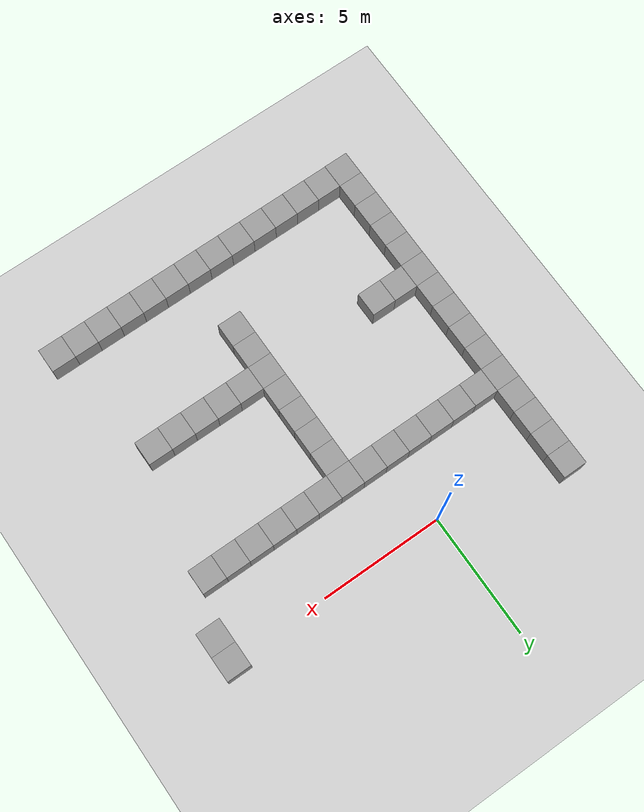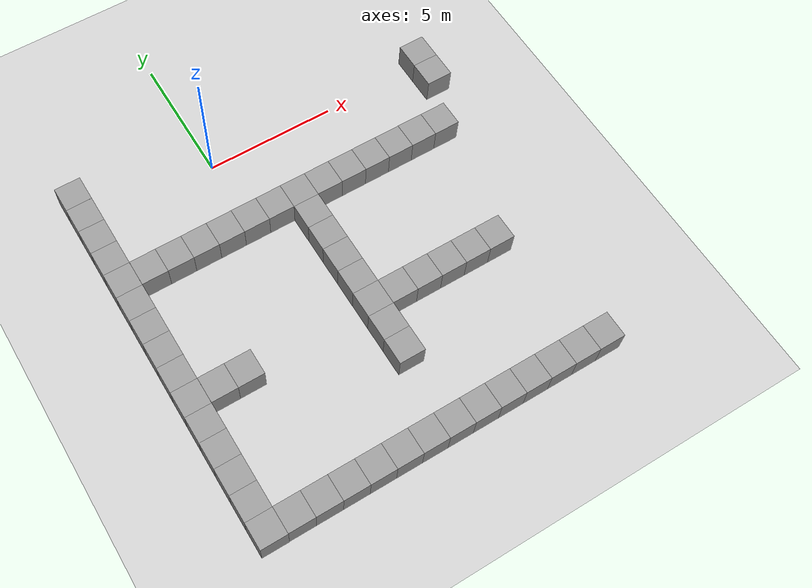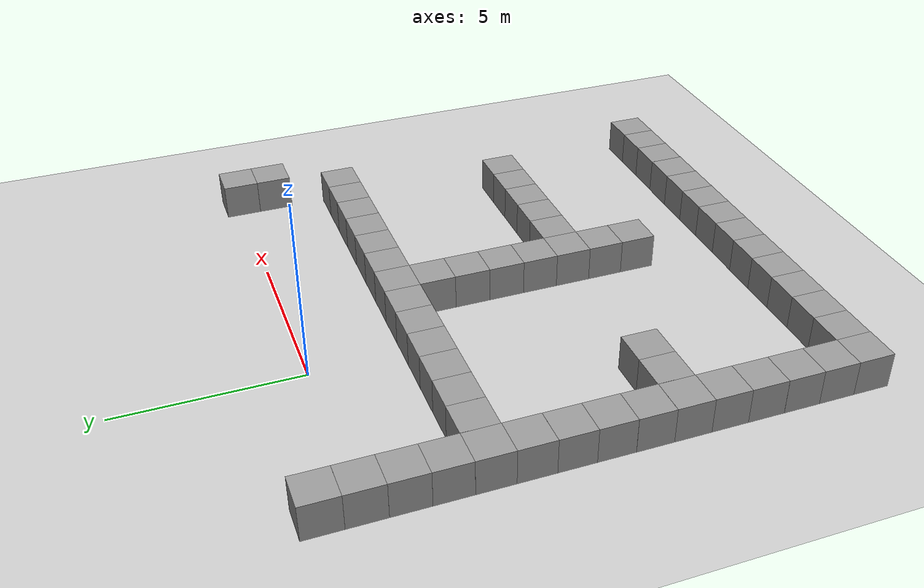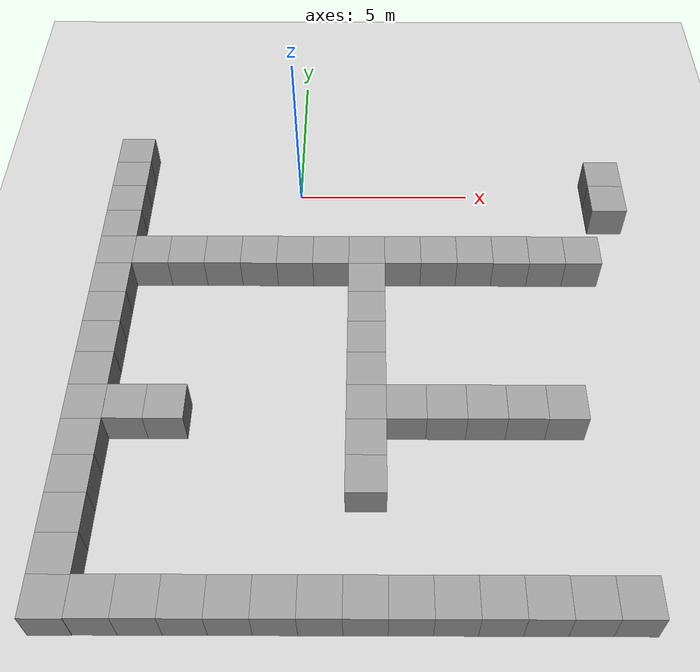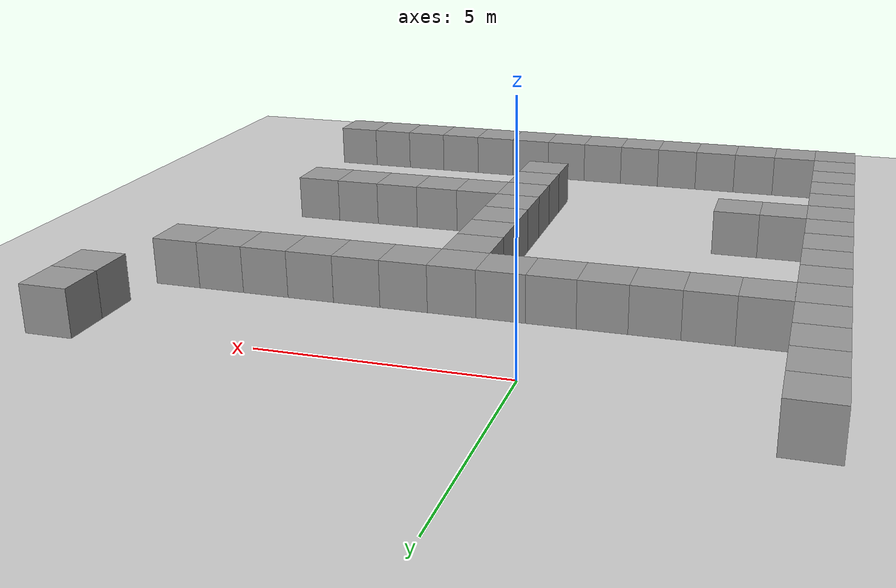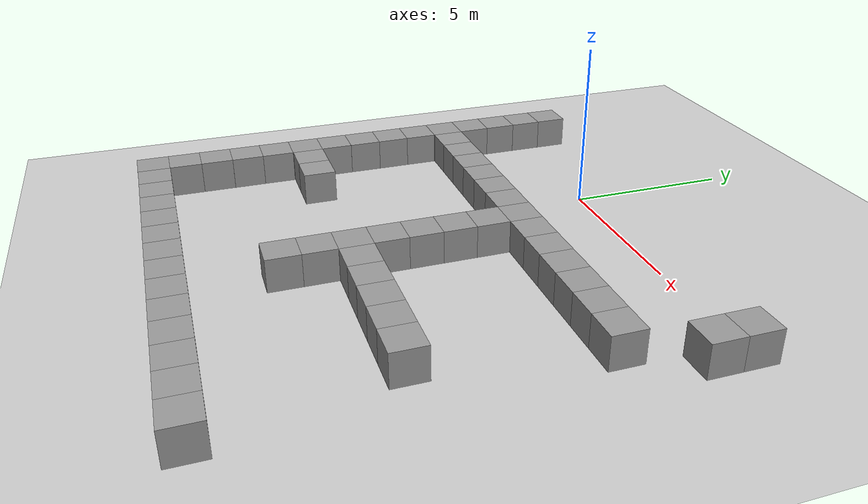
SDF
<sdf version="1.4">
 <world name="default">
  <model name="ground_plane">
   <static>1</static>
   <link name="link">
    <collision name="collision">
     <geometry><plane><normal>0 0 1</normal><size>100 100</size></plane></geometry>
     <surface><friction><ode><mu>100</mu><mu2>50</mu2></ode></friction></surface>
    </collision>
    <visual name="visual">
     <cast_shadows>0</cast_shadows>
     <geometry><plane><normal>0 0 1</normal><size>100 100</size></plane></geometry>
     <material>
      <script><uri>file://media/materials/scripts/gazebo.material</uri><name>Gazebo/Grey</name></script>
     </material>
    </visual>
    <velocity_decay><linear>0</linear><angular>0</angular></velocity_decay>
   </link>
  </model>
  <model name="unit_box_15">
   <pose>-0.999934 -2.99993 0.5 0 0 -3.9e-05</pose>
   <static>1</static>
   <link name="link">
    <inertial>
     <mass>1</mass>
     <inertia><ixx>1</ixx><ixy>0</ixy><ixz>0</ixz><iyy>1</iyy><iyz>0</iyz><izz>1</izz></inertia>
    </inertial>
    <collision name="collision"><geometry><box><size>1 1 1</size></box></geometry></collision>
    <visual name="visual">
     <geometry><box><size>1 1 1</size></box></geometry>
     <material>
      <script><uri>file://media/materials/scripts/gazebo.material</uri><name>Gazebo/Grey</name></script>
     </material>
    </visual>
    <velocity_decay><linear>0</linear><angular>0</angular></velocity_decay>
   </link>
   <static>0</static>
  </model>
  <model name="unit_box_16">
   <pose>6.7e-05 -2.99994 0.5 0 0 -3.6e-05</pose>
   <static>1</static>
   <link name="link">
    <inertial>
     <mass>1</mass>
     <inertia><ixx>1</ixx><ixy>0</ixy><ixz>0</ixz><iyy>1</iyy><iyz>0</iyz><izz>1</izz></inertia>
    </inertial>
    <collision name="collision"><geometry><box><size>1 1 1</size></box></geometry></collision>
    <visual name="visual">
     <geometry><box><size>1 1 1</size></box></geometry>
     <material>
      <script><uri>file://media/materials/scripts/gazebo.material</uri><name>Gazebo/Grey</name></script>
     </material>
    </visual>
    <velocity_decay><linear>0</linear><angular>0</angular></velocity_decay>
   </link>
   <static>0</static>
  </model>
  <model name="unit_box_17">
   <pose>1.00008 -2.99994 0.5 0 0 -1.9e-05</pose>
   <static>1</static>
   <link name="link">
    <inertial>
     <mass>1</mass>
     <inertia><ixx>1</ixx><ixy>0</ixy><ixz>0</ixz><iyy>1</iyy><iyz>0</iyz><izz>1</izz></inertia>
    </inertial>
    <collision name="collision"><geometry><box><size>1 1 1</size></box></geometry></collision>
    <visual name="visual">
     <geometry><box><size>1 1 1</size></box></geometry>
     <material>
      <script><uri>file://media/materials/scripts/gazebo.material</uri><name>Gazebo/Grey</name></script>
     </material>
    </visual>
    <velocity_decay><linear>0</linear><angular>0</angular></velocity_decay>
   </link>
   <static>0</static>
  </model>
  <model name="unit_box_18">
   <pose>2.00008 -2.99995 0.5 0 0 -1.5e-05</pose>
   <static>1</static>
   <link name="link">
    <inertial>
     <mass>1</mass>
     <inertia><ixx>1</ixx><ixy>0</ixy><ixz>0</ixz><iyy>1</iyy><iyz>0</iyz><izz>1</izz></inertia>
    </inertial>
    <collision name="collision"><geometry><box><size>1 1 1</size></box></geometry></collision>
    <visual name="visual">
     <geometry><box><size>1 1 1</size></box></geometry>
     <material>
      <script><uri>file://media/materials/scripts/gazebo.material</uri><name>Gazebo/Grey</name></script>
     </material>
    </visual>
    <velocity_decay><linear>0</linear><angular>0</angular></velocity_decay>
   </link>
   <static>0</static>
  </model>
  <model name="unit_box_19">
   <pose>3.00008 -2.9999 0.5 0 0 -1e-05</pose>
   <static>1</static>
   <link name="link">
    <inertial>
     <mass>1</mass>
     <inertia><ixx>1</ixx><ixy>0</ixy><ixz>0</ixz><iyy>1</iyy><iyz>0</iyz><izz>1</izz></inertia>
    </inertial>
    <collision name="collision"><geometry><box><size>1 1 1</size></box></geometry></collision>
    <visual name="visual">
     <geometry><box><size>1 1 1</size></box></geometry>
     <material>
      <script><uri>file://media/materials/scripts/gazebo.material</uri><name>Gazebo/Grey</name></script>
     </material>
    </visual>
    <velocity_decay><linear>0</linear><angular>0</angular></velocity_decay>
   </link>
   <static>0</static>
  </model>
  <model name="unit_box_20">
   <pose>4.00008 -2.99993 0.5 0 0 -1e-05</pose>
   <static>1</static>
   <link name="link">
    <inertial>
     <mass>1</mass>
     <inertia><ixx>1</ixx><ixy>0</ixy><ixz>0</ixz><iyy>1</iyy><iyz>0</iyz><izz>1</izz></inertia>
    </inertial>
    <collision name="collision"><geometry><box><size>1 1 1</size></box></geometry></collision>
    <visual name="visual">
     <geometry><box><size>1 1 1</size></box></geometry>
     <material>
      <script><uri>file://media/materials/scripts/gazebo.material</uri><name>Gazebo/Grey</name></script>
     </material>
    </visual>
    <velocity_decay><linear>0</linear><angular>0</angular></velocity_decay>
   </link>
   <static>0</static>
  </model>
  <model name="unit_box_21">
   <pose>5.00008 -2.99993 0.5 0 0 -1.2e-05</pose>
   <static>1</static>
   <link name="link">
    <inertial>
     <mass>1</mass>
     <inertia><ixx>1</ixx><ixy>0</ixy><ixz>0</ixz><iyy>1</iyy><iyz>0</iyz><izz>1</izz></inertia>
    </inertial>
    <collision name="collision"><geometry><box><size>1 1 1</size></box></geometry></collision>
    <visual name="visual">
     <geometry><box><size>1 1 1</size></box></geometry>
     <material>
      <script><uri>file://media/materials/scripts/gazebo.material</uri><name>Gazebo/Grey</name></script>
     </material>
    </visual>
    <velocity_decay><linear>0</linear><angular>0</angular></velocity_decay>
   </link>
   <static>0</static>
  </model>
  <model name="unit_box_22">
   <pose>6.00009 -2.99997 0.5 0 0 -1.2e-05</pose>
   <static>1</static>
   <link name="link">
    <inertial>
     <mass>1</mass>
     <inertia><ixx>1</ixx><ixy>0</ixy><ixz>0</ixz><iyy>1</iyy><iyz>0</iyz><izz>1</izz></inertia>
    </inertial>
    <collision name="collision"><geometry><box><size>1 1 1</size></box></geometry></collision>
    <visual name="visual">
     <geometry><box><size>1 1 1</size></box></geometry>
     <material>
      <script><uri>file://media/materials/scripts/gazebo.material</uri><name>Gazebo/Grey</name></script>
     </material>
    </visual>
    <velocity_decay><linear>0</linear><angular>0</angular></velocity_decay>
   </link>
   <static>0</static>
  </model>
  <model name="unit_box_23">
   <pose>7.00009 -2.99996 0.5 0 0 -1e-05</pose>
   <static>1</static>
   <link name="link">
    <inertial>
     <mass>1</mass>
     <inertia><ixx>1</ixx><ixy>0</ixy><ixz>0</ixz><iyy>1</iyy><iyz>0</iyz><izz>1</izz></inertia>
    </inertial>
    <collision name="collision"><geometry><box><size>1 1 1</size></box></geometry></collision>
    <visual name="visual">
     <geometry><box><size>1 1 1</size></box></geometry>
     <material>
      <script><uri>file://media/materials/scripts/gazebo.material</uri><name>Gazebo/Grey</name></script>
     </material>
    </visual>
    <velocity_decay><linear>0</linear><angular>0</angular></velocity_decay>
   </link>
   <static>0</static>
  </model>
  <model name="unit_box_24">
   <pose>8.00009 -3 0.5 0 0 -1.4e-05</pose>
   <static>1</static>
   <link name="link">
    <inertial>
     <mass>1</mass>
     <inertia><ixx>1</ixx><ixy>0</ixy><ixz>0</ixz><iyy>1</iyy><iyz>0</iyz><izz>1</izz></inertia>
    </inertial>
    <collision name="collision"><geometry><box><size>1 1 1</size></box></geometry></collision>
    <visual name="visual">
     <geometry><box><size>1 1 1</size></box></geometry>
     <material>
      <script><uri>file://media/materials/scripts/gazebo.material</uri><name>Gazebo/Grey</name></script>
     </material>
    </visual>
    <velocity_decay><linear>0</linear><angular>0</angular></velocity_decay>
   </link>
   <static>0</static>
  </model>
  <model name="unit_box_27">
   <pose>8.99997 -1.00001 0.5 0 0 -1e-05</pose>
   <static>1</static>
   <link name="link">
    <inertial>
     <mass>1</mass>
     <inertia><ixx>1</ixx><ixy>0</ixy><ixz>0</ixz><iyy>1</iyy><iyz>0</iyz><izz>1</izz></inertia>
    </inertial>
    <collision name="collision"><geometry><box><size>1 1 1</size></box></geometry></collision>
    <visual name="visual">
     <geometry><box><size>1 1 1</size></box></geometry>
     <material>
      <script><uri>file://media/materials/scripts/gazebo.material</uri><name>Gazebo/Grey</name></script>
     </material>
    </visual>
    <velocity_decay><linear>0</linear><angular>0</angular></velocity_decay>
   </link>
   <static>0</static>
  </model>
  <model name="unit_box_28">
   <pose>8.99994 -8e-06 0.5 0 0 -1.1e-05</pose>
   <static>1</static>
   <link name="link">
    <inertial>
     <mass>1</mass>
     <inertia><ixx>1</ixx><ixy>0</ixy><ixz>0</ixz><iyy>1</iyy><iyz>0</iyz><izz>1</izz></inertia>
    </inertial>
    <collision name="collision"><geometry><box><size>1 1 1</size></box></geometry></collision>
    <visual name="visual">
     <geometry><box><size>1 1 1</size></box></geometry>
     <material>
      <script><uri>file://media/materials/scripts/gazebo.material</uri><name>Gazebo/Grey</name></script>
     </material>
    </visual>
    <velocity_decay><linear>0</linear><angular>0</angular></velocity_decay>
   </link>
   <static>0</static>
  </model>
  <model name="unit_box_43">
   <pose>-5.00197 0.99143 0.5 0 -0 0.001375</pose>
   <static>1</static>
   <link name="link">
    <inertial>
     <mass>1</mass>
     <inertia><ixx>1</ixx><ixy>0</ixy><ixz>0</ixz><iyy>1</iyy><iyz>0</iyz><izz>1</izz></inertia>
    </inertial>
    <collision name="collision"><geometry><box><size>1 1 1</size></box></geometry></collision>
    <visual name="visual">
     <geometry><box><size>1 1 1</size></box></geometry>
     <material>
      <script><uri>file://media/materials/scripts/gazebo.material</uri><name>Gazebo/Grey</name></script>
     </material>
    </visual>
    <velocity_decay><linear>0</linear><angular>0</angular></velocity_decay>
   </link>
   <static>0</static>
  </model>
  <model name="unit_box_44">
   <pose>-5.00065 -0.008792 0.5 0 -0 0.000932</pose>
   <static>1</static>
   <link name="link">
    <inertial>
     <mass>1</mass>
     <inertia><ixx>1</ixx><ixy>0</ixy><ixz>0</ixz><iyy>1</iyy><iyz>0</iyz><izz>1</izz></inertia>
    </inertial>
    <collision name="collision"><geometry><box><size>1 1 1</size></box></geometry></collision>
    <visual name="visual">
     <geometry><box><size>1 1 1</size></box></geometry>
     <material>
      <script><uri>file://media/materials/scripts/gazebo.material</uri><name>Gazebo/Grey</name></script>
     </material>
    </visual>
    <velocity_decay><linear>0</linear><angular>0</angular></velocity_decay>
   </link>
   <static>0</static>
  </model>
  <model name="unit_box_45">
   <pose>-5.00074 -1.00881 0.5 0 -0 0.000893</pose>
   <static>1</static>
   <link name="link">
    <inertial>
     <mass>1</mass>
     <inertia><ixx>1</ixx><ixy>0</ixy><ixz>0</ixz><iyy>1</iyy><iyz>0</iyz><izz>1</izz></inertia>
    </inertial>
    <collision name="collision"><geometry><box><size>1 1 1</size></box></geometry></collision>
    <visual name="visual">
     <geometry><box><size>1 1 1</size></box></geometry>
     <material>
      <script><uri>file://media/materials/scripts/gazebo.material</uri><name>Gazebo/Grey</name></script>
     </material>
    </visual>
    <velocity_decay><linear>0</linear><angular>0</angular></velocity_decay>
   </link>
   <static>0</static>
  </model>
  <model name="unit_box_46">
   <pose>-5.00037 -2.00886 0.5 0 -0 0.000802</pose>
   <static>1</static>
   <link name="link">
    <inertial>
     <mass>1</mass>
     <inertia><ixx>1</ixx><ixy>0</ixy><ixz>0</ixz><iyy>1</iyy><iyz>0</iyz><izz>1</izz></inertia>
    </inertial>
    <collision name="collision"><geometry><box><size>1 1 1</size></box></geometry></collision>
    <visual name="visual">
     <geometry><box><size>1 1 1</size></box></geometry>
     <material>
      <script><uri>file://media/materials/scripts/gazebo.material</uri><name>Gazebo/Grey</name></script>
     </material>
    </visual>
    <velocity_decay><linear>0</linear><angular>0</angular></velocity_decay>
   </link>
   <static>0</static>
  </model>
  <model name="unit_box_47">
   <pose>-5.00047 -3.0089 0.5 0 -0 0.000729</pose>
   <static>1</static>
   <link name="link">
    <inertial>
     <mass>1</mass>
     <inertia><ixx>1</ixx><ixy>0</ixy><ixz>0</ixz><iyy>1</iyy><iyz>0</iyz><izz>1</izz></inertia>
    </inertial>
    <collision name="collision"><geometry><box><size>1 1 1</size></box></geometry></collision>
    <visual name="visual">
     <geometry><box><size>1 1 1</size></box></geometry>
     <material>
      <script><uri>file://media/materials/scripts/gazebo.material</uri><name>Gazebo/Grey</name></script>
     </material>
    </visual>
    <velocity_decay><linear>0</linear><angular>0</angular></velocity_decay>
   </link>
   <static>0</static>
  </model>
  <model name="unit_box_48">
   <pose>-3.99998 -3.00036 0.5 0 0 -0.000119</pose>
   <static>1</static>
   <link name="link">
    <inertial>
     <mass>1</mass>
     <inertia><ixx>1</ixx><ixy>0</ixy><ixz>0</ixz><iyy>1</iyy><iyz>0</iyz><izz>1</izz></inertia>
    </inertial>
    <collision name="collision"><geometry><box><size>1 1 1</size></box></geometry></collision>
    <visual name="visual">
     <geometry><box><size>1 1 1</size></box></geometry>
     <material>
      <script><uri>file://media/materials/scripts/gazebo.material</uri><name>Gazebo/Grey</name></script>
     </material>
    </visual>
    <velocity_decay><linear>0</linear><angular>0</angular></velocity_decay>
   </link>
   <static>0</static>
  </model>
  <model name="unit_box_49">
   <pose>-2.99995 -3.00005 0.5 0 0 -7.3e-05</pose>
   <static>1</static>
   <link name="link">
    <inertial>
     <mass>1</mass>
     <inertia><ixx>1</ixx><ixy>0</ixy><ixz>0</ixz><iyy>1</iyy><iyz>0</iyz><izz>1</izz></inertia>
    </inertial>
    <collision name="collision"><geometry><box><size>1 1 1</size></box></geometry></collision>
    <visual name="visual">
     <geometry><box><size>1 1 1</size></box></geometry>
     <material>
      <script><uri>file://media/materials/scripts/gazebo.material</uri><name>Gazebo/Grey</name></script>
     </material>
    </visual>
    <velocity_decay><linear>0</linear><angular>0</angular></velocity_decay>
   </link>
   <static>0</static>
  </model>
  <model name="unit_box_50">
   <pose>-1.99995 -3.00002 0.5 0 0 -7.1e-05</pose>
   <static>1</static>
   <link name="link">
    <inertial>
     <mass>1</mass>
     <inertia><ixx>1</ixx><ixy>0</ixy><ixz>0</ixz><iyy>1</iyy><iyz>0</iyz><izz>1</izz></inertia>
    </inertial>
    <collision name="collision"><geometry><box><size>1 1 1</size></box></geometry></collision>
    <visual name="visual">
     <geometry><box><size>1 1 1</size></box></geometry>
     <material>
      <script><uri>file://media/materials/scripts/gazebo.material</uri><name>Gazebo/Grey</name></script>
     </material>
    </visual>
    <velocity_decay><linear>0</linear><angular>0</angular></velocity_decay>
   </link>
   <static>0</static>
  </model>
  <model name="unit_box_224">
   <pose>1.99999 -3.99999 0.5 0 0 -4e-06</pose>
   <static>1</static>
   <link name="link">
    <inertial>
     <mass>1</mass>
     <inertia><ixx>1</ixx><ixy>0</ixy><ixz>0</ixz><iyy>1</iyy><iyz>0</iyz><izz>1</izz></inertia>
    </inertial>
    <collision name="collision"><geometry><box><size>1 1 1</size></box></geometry></collision>
    <visual name="visual">
     <geometry><box><size>1 1 1</size></box></geometry>
     <material>
      <script><uri>file://media/materials/scripts/gazebo.material</uri><name>Gazebo/Grey</name></script>
     </material>
    </visual>
    <velocity_decay><linear>0</linear><angular>0</angular></velocity_decay>
   </link>
   <static>0</static>
  </model>
  <model name="unit_box_225">
   <pose>2 -4.99999 0.5 0 0 -4e-06</pose>
   <static>1</static>
   <link name="link">
    <inertial>
     <mass>1</mass>
     <inertia><ixx>1</ixx><ixy>0</ixy><ixz>0</ixz><iyy>1</iyy><iyz>0</iyz><izz>1</izz></inertia>
    </inertial>
    <collision name="collision"><geometry><box><size>1 1 1</size></box></geometry></collision>
    <visual name="visual">
     <geometry><box><size>1 1 1</size></box></geometry>
     <material>
      <script><uri>file://media/materials/scripts/gazebo.material</uri><name>Gazebo/Grey</name></script>
     </material>
    </visual>
    <velocity_decay><linear>0</linear><angular>0</angular></velocity_decay>
   </link>
   <static>0</static>
  </model>
  <model name="unit_box_226">
   <pose>2.00001 -6 0.5 0 0 -3e-06</pose>
   <static>1</static>
   <link name="link">
    <inertial>
     <mass>1</mass>
     <inertia><ixx>1</ixx><ixy>0</ixy><ixz>0</ixz><iyy>1</iyy><iyz>0</iyz><izz>1</izz></inertia>
    </inertial>
    <collision name="collision"><geometry><box><size>1 1 1</size></box></geometry></collision>
    <visual name="visual">
     <geometry><box><size>1 1 1</size></box></geometry>
     <material>
      <script><uri>file://media/materials/scripts/gazebo.material</uri><name>Gazebo/Grey</name></script>
     </material>
    </visual>
    <velocity_decay><linear>0</linear><angular>0</angular></velocity_decay>
   </link>
   <static>0</static>
  </model>
  <model name="unit_box_227">
   <pose>2 -7 0.5 0 0 -4e-06</pose>
   <static>1</static>
   <link name="link">
    <inertial>
     <mass>1</mass>
     <inertia><ixx>1</ixx><ixy>0</ixy><ixz>0</ixz><iyy>1</iyy><iyz>0</iyz><izz>1</izz></inertia>
    </inertial>
    <collision name="collision"><geometry><box><size>1 1 1</size></box></geometry></collision>
    <visual name="visual">
     <geometry><box><size>1 1 1</size></box></geometry>
     <material>
      <script><uri>file://media/materials/scripts/gazebo.material</uri><name>Gazebo/Grey</name></script>
     </material>
    </visual>
    <velocity_decay><linear>0</linear><angular>0</angular></velocity_decay>
   </link>
   <static>0</static>
  </model>
  <model name="unit_box_228">
   <pose>2 -8 0.5 0 0 -4e-06</pose>
   <static>1</static>
   <link name="link">
    <inertial>
     <mass>1</mass>
     <inertia><ixx>1</ixx><ixy>0</ixy><ixz>0</ixz><iyy>1</iyy><iyz>0</iyz><izz>1</izz></inertia>
    </inertial>
    <collision name="collision"><geometry><box><size>1 1 1</size></box></geometry></collision>
    <visual name="visual">
     <geometry><box><size>1 1 1</size></box></geometry>
     <material>
      <script><uri>file://media/materials/scripts/gazebo.material</uri><name>Gazebo/Grey</name></script>
     </material>
    </visual>
    <velocity_decay><linear>0</linear><angular>0</angular></velocity_decay>
   </link>
   <static>0</static>
  </model>
  <model name="unit_box_229">
   <pose>2 -9 0.5 0 0 -3e-06</pose>
   <static>1</static>
   <link name="link">
    <inertial>
     <mass>1</mass>
     <inertia><ixx>1</ixx><ixy>0</ixy><ixz>0</ixz><iyy>1</iyy><iyz>0</iyz><izz>1</izz></inertia>
    </inertial>
    <collision name="collision"><geometry><box><size>1 1 1</size></box></geometry></collision>
    <visual name="visual">
     <geometry><box><size>1 1 1</size></box></geometry>
     <material>
      <script><uri>file://media/materials/scripts/gazebo.material</uri><name>Gazebo/Grey</name></script>
     </material>
    </visual>
    <velocity_decay><linear>0</linear><angular>0</angular></velocity_decay>
   </link>
   <static>0</static>
  </model>
  <model name="unit_box_230">
   <pose>3 -8 0.5 0 0 -4e-06</pose>
   <static>1</static>
   <link name="link">
    <inertial>
     <mass>1</mass>
     <inertia><ixx>1</ixx><ixy>0</ixy><ixz>0</ixz><iyy>1</iyy><iyz>0</iyz><izz>1</izz></inertia>
    </inertial>
    <collision name="collision"><geometry><box><size>1 1 1</size></box></geometry></collision>
    <visual name="visual">
     <geometry><box><size>1 1 1</size></box></geometry>
     <material>
      <script><uri>file://media/materials/scripts/gazebo.material</uri><name>Gazebo/Grey</name></script>
     </material>
    </visual>
    <velocity_decay><linear>0</linear><angular>0</angular></velocity_decay>
   </link>
   <static>0</static>
  </model>
  <model name="unit_box_231">
   <pose>4 -8 0.5 0 0 -5e-06</pose>
   <static>1</static>
   <link name="link">
    <inertial>
     <mass>1</mass>
     <inertia><ixx>1</ixx><ixy>0</ixy><ixz>0</ixz><iyy>1</iyy><iyz>0</iyz><izz>1</izz></inertia>
    </inertial>
    <collision name="collision"><geometry><box><size>1 1 1</size></box></geometry></collision>
    <visual name="visual">
     <geometry><box><size>1 1 1</size></box></geometry>
     <material>
      <script><uri>file://media/materials/scripts/gazebo.material</uri><name>Gazebo/Grey</name></script>
     </material>
    </visual>
    <velocity_decay><linear>0</linear><angular>0</angular></velocity_decay>
   </link>
   <static>0</static>
  </model>
  <model name="unit_box_232">
   <pose>5 -7.99999 0.5 0 0 -5e-06</pose>
   <static>1</static>
   <link name="link">
    <inertial>
     <mass>1</mass>
     <inertia><ixx>1</ixx><ixy>0</ixy><ixz>0</ixz><iyy>1</iyy><iyz>0</iyz><izz>1</izz></inertia>
    </inertial>
    <collision name="collision"><geometry><box><size>1 1 1</size></box></geometry></collision>
    <visual name="visual">
     <geometry><box><size>1 1 1</size></box></geometry>
     <material>
      <script><uri>file://media/materials/scripts/gazebo.material</uri><name>Gazebo/Grey</name></script>
     </material>
    </visual>
    <velocity_decay><linear>0</linear><angular>0</angular></velocity_decay>
   </link>
   <static>0</static>
  </model>
  <model name="unit_box_233">
   <pose>6 -8 0.5 0 0 -5e-06</pose>
   <static>1</static>
   <link name="link">
    <inertial>
     <mass>1</mass>
     <inertia><ixx>1</ixx><ixy>0</ixy><ixz>0</ixz><iyy>1</iyy><iyz>0</iyz><izz>1</izz></inertia>
    </inertial>
    <collision name="collision"><geometry><box><size>1 1 1</size></box></geometry></collision>
    <visual name="visual">
     <geometry><box><size>1 1 1</size></box></geometry>
     <material>
      <script><uri>file://media/materials/scripts/gazebo.material</uri><name>Gazebo/Grey</name></script>
     </material>
    </visual>
    <velocity_decay><linear>0</linear><angular>0</angular></velocity_decay>
   </link>
   <static>0</static>
  </model>
  <model name="unit_box_234">
   <pose>7 -7.99999 0.5 0 0 -5e-06</pose>
   <static>1</static>
   <link name="link">
    <inertial>
     <mass>1</mass>
     <inertia><ixx>1</ixx><ixy>0</ixy><ixz>0</ixz><iyy>1</iyy><iyz>0</iyz><izz>1</izz></inertia>
    </inertial>
    <collision name="collision"><geometry><box><size>1 1 1</size></box></geometry></collision>
    <visual name="visual">
     <geometry><box><size>1 1 1</size></box></geometry>
     <material>
      <script><uri>file://media/materials/scripts/gazebo.material</uri><name>Gazebo/Grey</name></script>
     </material>
    </visual>
    <velocity_decay><linear>0</linear><angular>0</angular></velocity_decay>
   </link>
   <static>0</static>
  </model>
  <model name="unit_box_240">
   <pose>2 -10 0.5 0 0 -3e-06</pose>
   <static>1</static>
   <link name="link">
    <inertial>
     <mass>1</mass>
     <inertia><ixx>1</ixx><ixy>0</ixy><ixz>0</ixz><iyy>1</iyy><iyz>0</iyz><izz>1</izz></inertia>
    </inertial>
    <collision name="collision"><geometry><box><size>1 1 1</size></box></geometry></collision>
    <visual name="visual">
     <geometry><box><size>1 1 1</size></box></geometry>
     <material>
      <script><uri>file://media/materials/scripts/gazebo.material</uri><name>Gazebo/Grey</name></script>
     </material>
    </visual>
    <velocity_decay><linear>0</linear><angular>0</angular></velocity_decay>
   </link>
   <static>0</static>
  </model>
  <model name="unit_box_241">
   <pose>-4.99974 -4.00895 0.5 0 -0 0.000637</pose>
   <static>1</static>
   <link name="link">
    <inertial>
     <mass>1</mass>
     <inertia><ixx>1</ixx><ixy>0</ixy><ixz>0</ixz><iyy>1</iyy><iyz>0</iyz><izz>1</izz></inertia>
    </inertial>
    <collision name="collision"><geometry><box><size>1 1 1</size></box></geometry></collision>
    <visual name="visual">
     <geometry><box><size>1 1 1</size></box></geometry>
     <material>
      <script><uri>file://media/materials/scripts/gazebo.material</uri><name>Gazebo/Grey</name></script>
     </material>
    </visual>
    <velocity_decay><linear>0</linear><angular>0</angular></velocity_decay>
   </link>
   <static>0</static>
  </model>
  <model name="unit_box_243">
   <pose>-4 -8 0.5 0 0 -2e-06</pose>
   <static>1</static>
   <link name="link">
    <inertial>
     <mass>1</mass>
     <inertia><ixx>1</ixx><ixy>0</ixy><ixz>0</ixz><iyy>1</iyy><iyz>0</iyz><izz>1</izz></inertia>
    </inertial>
    <collision name="collision"><geometry><box><size>1 1 1</size></box></geometry></collision>
    <visual name="visual">
     <geometry><box><size>1 1 1</size></box></geometry>
     <material>
      <script><uri>file://media/materials/scripts/gazebo.material</uri><name>Gazebo/Grey</name></script>
     </material>
    </visual>
    <velocity_decay><linear>0</linear><angular>0</angular></velocity_decay>
   </link>
   <static>0</static>
  </model>
  <model name="unit_box_244">
   <pose>-3 -8 0.5 0 -0 4e-06</pose>
   <static>1</static>
   <link name="link">
    <inertial>
     <mass>1</mass>
     <inertia><ixx>1</ixx><ixy>0</ixy><ixz>0</ixz><iyy>1</iyy><iyz>0</iyz><izz>1</izz></inertia>
    </inertial>
    <collision name="collision"><geometry><box><size>1 1 1</size></box></geometry></collision>
    <visual name="visual">
     <geometry><box><size>1 1 1</size></box></geometry>
     <material>
      <script><uri>file://media/materials/scripts/gazebo.material</uri><name>Gazebo/Grey</name></script>
     </material>
    </visual>
    <velocity_decay><linear>0</linear><angular>0</angular></velocity_decay>
   </link>
   <static>0</static>
  </model>
  <model name="unit_box_251">
   <pose>-4.00002 -13 0.5 1.61559e-27 -1e-06 -1.2e-05</pose>
   <static>1</static>
   <link name="link">
    <inertial>
     <mass>1</mass>
     <inertia><ixx>1</ixx><ixy>0</ixy><ixz>0</ixz><iyy>1</iyy><iyz>0</iyz><izz>1</izz></inertia>
    </inertial>
    <collision name="collision"><geometry><box><size>1 1 1</size></box></geometry></collision>
    <visual name="visual">
     <geometry><box><size>1 1 1</size></box></geometry>
     <material>
      <script><uri>file://media/materials/scripts/gazebo.material</uri><name>Gazebo/Grey</name></script>
     </material>
    </visual>
    <velocity_decay><linear>0</linear><angular>0</angular></velocity_decay>
   </link>
   <static>0</static>
  </model>
  <model name="unit_box_252">
   <pose>-3.00002 -13 0.5 0 0 -1.1e-05</pose>
   <static>1</static>
   <link name="link">
    <inertial>
     <mass>1</mass>
     <inertia><ixx>1</ixx><ixy>0</ixy><ixz>0</ixz><iyy>1</iyy><iyz>0</iyz><izz>1</izz></inertia>
    </inertial>
    <collision name="collision"><geometry><box><size>1 1 1</size></box></geometry></collision>
    <visual name="visual">
     <geometry><box><size>1 1 1</size></box></geometry>
     <material>
      <script><uri>file://media/materials/scripts/gazebo.material</uri><name>Gazebo/Grey</name></script>
     </material>
    </visual>
    <velocity_decay><linear>0</linear><angular>0</angular></velocity_decay>
   </link>
   <static>0</static>
  </model>
  <model name="unit_box_253">
   <pose>-2.00001 -13 0.5 0 0 -1e-05</pose>
   <static>1</static>
   <link name="link">
    <inertial>
     <mass>1</mass>
     <inertia><ixx>1</ixx><ixy>0</ixy><ixz>0</ixz><iyy>1</iyy><iyz>0</iyz><izz>1</izz></inertia>
    </inertial>
    <collision name="collision"><geometry><box><size>1 1 1</size></box></geometry></collision>
    <visual name="visual">
     <geometry><box><size>1 1 1</size></box></geometry>
     <material>
      <script><uri>file://media/materials/scripts/gazebo.material</uri><name>Gazebo/Grey</name></script>
     </material>
    </visual>
    <velocity_decay><linear>0</linear><angular>0</angular></velocity_decay>
   </link>
   <static>0</static>
  </model>
  <model name="unit_box_254">
   <pose>-1.00001 -13 0.5 0 0 -1e-05</pose>
   <static>1</static>
   <link name="link">
    <inertial>
     <mass>1</mass>
     <inertia><ixx>1</ixx><ixy>0</ixy><ixz>0</ixz><iyy>1</iyy><iyz>0</iyz><izz>1</izz></inertia>
    </inertial>
    <collision name="collision"><geometry><box><size>1 1 1</size></box></geometry></collision>
    <visual name="visual">
     <geometry><box><size>1 1 1</size></box></geometry>
     <material>
      <script><uri>file://media/materials/scripts/gazebo.material</uri><name>Gazebo/Grey</name></script>
     </material>
    </visual>
    <velocity_decay><linear>0</linear><angular>0</angular></velocity_decay>
   </link>
   <static>0</static>
  </model>
  <model name="unit_box_255">
   <pose>-1.2e-05 -12.9999 0.5 0 0 -8e-06</pose>
   <static>1</static>
   <link name="link">
    <inertial>
     <mass>1</mass>
     <inertia><ixx>1</ixx><ixy>0</ixy><ixz>0</ixz><iyy>1</iyy><iyz>0</iyz><izz>1</izz></inertia>
    </inertial>
    <collision name="collision"><geometry><box><size>1 1 1</size></box></geometry></collision>
    <visual name="visual">
     <geometry><box><size>1 1 1</size></box></geometry>
     <material>
      <script><uri>file://media/materials/scripts/gazebo.material</uri><name>Gazebo/Grey</name></script>
     </material>
    </visual>
    <velocity_decay><linear>0</linear><angular>0</angular></velocity_decay>
   </link>
   <static>0</static>
  </model>
  <model name="unit_box_256">
   <pose>0.999991 -12.9999 0.5 0 0 -7e-06</pose>
   <static>1</static>
   <link name="link">
    <inertial>
     <mass>1</mass>
     <inertia><ixx>1</ixx><ixy>0</ixy><ixz>0</ixz><iyy>1</iyy><iyz>0</iyz><izz>1</izz></inertia>
    </inertial>
    <collision name="collision"><geometry><box><size>1 1 1</size></box></geometry></collision>
    <visual name="visual">
     <geometry><box><size>1 1 1</size></box></geometry>
     <material>
      <script><uri>file://media/materials/scripts/gazebo.material</uri><name>Gazebo/Grey</name></script>
     </material>
    </visual>
    <velocity_decay><linear>0</linear><angular>0</angular></velocity_decay>
   </link>
   <static>0</static>
  </model>
  <model name="unit_box_257">
   <pose>1.99999 -12.9999 0.5 0 0 -7e-06</pose>
   <static>1</static>
   <link name="link">
    <inertial>
     <mass>1</mass>
     <inertia><ixx>1</ixx><ixy>0</ixy><ixz>0</ixz><iyy>1</iyy><iyz>0</iyz><izz>1</izz></inertia>
    </inertial>
    <collision name="collision"><geometry><box><size>1 1 1</size></box></geometry></collision>
    <visual name="visual">
     <geometry><box><size>1 1 1</size></box></geometry>
     <material>
      <script><uri>file://media/materials/scripts/gazebo.material</uri><name>Gazebo/Grey</name></script>
     </material>
    </visual>
    <velocity_decay><linear>0</linear><angular>0</angular></velocity_decay>
   </link>
   <static>0</static>
  </model>
  <model name="unit_box_258">
   <pose>2.99999 -12.9999 0.5 0 0 -5e-06</pose>
   <static>1</static>
   <link name="link">
    <inertial>
     <mass>1</mass>
     <inertia><ixx>1</ixx><ixy>0</ixy><ixz>0</ixz><iyy>1</iyy><iyz>0</iyz><izz>1</izz></inertia>
    </inertial>
    <collision name="collision"><geometry><box><size>1 1 1</size></box></geometry></collision>
    <visual name="visual">
     <geometry><box><size>1 1 1</size></box></geometry>
     <material>
      <script><uri>file://media/materials/scripts/gazebo.material</uri><name>Gazebo/Grey</name></script>
     </material>
    </visual>
    <velocity_decay><linear>0</linear><angular>0</angular></velocity_decay>
   </link>
   <static>0</static>
  </model>
  <model name="unit_box_259">
   <pose>4 -13 0.5 0 0 -5e-06</pose>
   <static>1</static>
   <link name="link">
    <inertial>
     <mass>1</mass>
     <inertia><ixx>1</ixx><ixy>0</ixy><ixz>0</ixz><iyy>1</iyy><iyz>0</iyz><izz>1</izz></inertia>
    </inertial>
    <collision name="collision"><geometry><box><size>1 1 1</size></box></geometry></collision>
    <visual name="visual">
     <geometry><box><size>1 1 1</size></box></geometry>
     <material>
      <script><uri>file://media/materials/scripts/gazebo.material</uri><name>Gazebo/Grey</name></script>
     </material>
    </visual>
    <velocity_decay><linear>0</linear><angular>0</angular></velocity_decay>
   </link>
   <static>0</static>
  </model>
  <model name="unit_box_260">
   <pose>5 -12.9999 0.499989 -3e-06 -0 -7e-06</pose>
   <static>1</static>
   <link name="link">
    <inertial>
     <mass>1</mass>
     <inertia><ixx>1</ixx><ixy>0</ixy><ixz>0</ixz><iyy>1</iyy><iyz>0</iyz><izz>1</izz></inertia>
    </inertial>
    <collision name="collision"><geometry><box><size>1 1 1</size></box></geometry></collision>
    <visual name="visual">
     <geometry><box><size>1 1 1</size></box></geometry>
     <material>
      <script><uri>file://media/materials/scripts/gazebo.material</uri><name>Gazebo/Grey</name></script>
     </material>
    </visual>
    <velocity_decay><linear>0</linear><angular>0</angular></velocity_decay>
   </link>
   <static>0</static>
  </model>
  <model name="unit_box_261">
   <pose>6 -13 0.500001 2e-06 3.23117e-27 -7e-06</pose>
   <static>1</static>
   <link name="link">
    <inertial>
     <mass>1</mass>
     <inertia><ixx>1</ixx><ixy>0</ixy><ixz>0</ixz><iyy>1</iyy><iyz>0</iyz><izz>1</izz></inertia>
    </inertial>
    <collision name="collision"><geometry><box><size>1 1 1</size></box></geometry></collision>
    <visual name="visual">
     <geometry><box><size>1 1 1</size></box></geometry>
     <material>
      <script><uri>file://media/materials/scripts/gazebo.material</uri><name>Gazebo/Grey</name></script>
     </material>
    </visual>
    <velocity_decay><linear>0</linear><angular>0</angular></velocity_decay>
   </link>
   <static>0</static>
  </model>
  <model name="unit_box_262">
   <pose>7 -13 0.5 0 0 -1.1e-05</pose>
   <static>1</static>
   <link name="link">
    <inertial>
     <mass>1</mass>
     <inertia><ixx>1</ixx><ixy>0</ixy><ixz>0</ixz><iyy>1</iyy><iyz>0</iyz><izz>1</izz></inertia>
    </inertial>
    <collision name="collision"><geometry><box><size>1 1 1</size></box></geometry></collision>
    <visual name="visual">
     <geometry><box><size>1 1 1</size></box></geometry>
     <material>
      <script><uri>file://media/materials/scripts/gazebo.material</uri><name>Gazebo/Grey</name></script>
     </material>
    </visual>
    <velocity_decay><linear>0</linear><angular>0</angular></velocity_decay>
   </link>
   <static>0</static>
  </model>
  <model name="unit_box_263">
   <pose>8 -13 0.499998 3e-06 -0 -1.1e-05</pose>
   <static>1</static>
   <link name="link">
    <inertial>
     <mass>1</mass>
     <inertia><ixx>1</ixx><ixy>0</ixy><ixz>0</ixz><iyy>1</iyy><iyz>0</iyz><izz>1</izz></inertia>
    </inertial>
    <collision name="collision"><geometry><box><size>1 1 1</size></box></geometry></collision>
    <visual name="visual">
     <geometry><box><size>1 1 1</size></box></geometry>
     <material>
      <script><uri>file://media/materials/scripts/gazebo.material</uri><name>Gazebo/Grey</name></script>
     </material>
    </visual>
    <velocity_decay><linear>0</linear><angular>0</angular></velocity_decay>
   </link>
   <static>0</static>
  </model>
  <model name="unit_box_1_0">
   <pose>-4.99941 -5.00907 0.499996 -4e-06 -3e-06 0.00044</pose>
   <link name="link">
    <inertial>
     <mass>1</mass>
     <inertia><ixx>1</ixx><ixy>0</ixy><ixz>0</ixz><iyy>1</iyy><iyz>0</iyz><izz>1</izz></inertia>
    </inertial>
    <collision name="collision"><geometry><box><size>1 1 1</size></box></geometry></collision>
    <visual name="visual">
     <geometry><box><size>1 1 1</size></box></geometry>
     <material>
      <script><uri>file://media/materials/scripts/gazebo.material</uri><name>Gazebo/Grey</name></script>
     </material>
    </visual>
    <velocity_decay><linear>0</linear><angular>0</angular></velocity_decay>
   </link>
   <static>0</static>
  </model>
  <model name="unit_box_2_0">
   <pose>-4.99888 -6.00909 0.5 0 -0 0.000451</pose>
   <link name="link">
    <inertial>
     <mass>1</mass>
     <inertia><ixx>1</ixx><ixy>0</ixy><ixz>0</ixz><iyy>1</iyy><iyz>0</iyz><izz>1</izz></inertia>
    </inertial>
    <collision name="collision"><geometry><box><size>1 1 1</size></box></geometry></collision>
    <visual name="visual">
     <geometry><box><size>1 1 1</size></box></geometry>
     <material>
      <script><uri>file://media/materials/scripts/gazebo.material</uri><name>Gazebo/Grey</name></script>
     </material>
    </visual>
    <velocity_decay><linear>0</linear><angular>0</angular></velocity_decay>
   </link>
   <static>0</static>
  </model>
  <model name="unit_box_3_0">
   <pose>-5.00138 -7.00913 0.499996 -4e-06 -3e-06 0.000444</pose>
   <link name="link">
    <inertial>
     <mass>1</mass>
     <inertia><ixx>1</ixx><ixy>0</ixy><ixz>0</ixz><iyy>1</iyy><iyz>0</iyz><izz>1</izz></inertia>
    </inertial>
    <collision name="collision"><geometry><box><size>1 1 1</size></box></geometry></collision>
    <visual name="visual">
     <geometry><box><size>1 1 1</size></box></geometry>
     <material>
      <script><uri>file://media/materials/scripts/gazebo.material</uri><name>Gazebo/Grey</name></script>
     </material>
    </visual>
    <velocity_decay><linear>0</linear><angular>0</angular></velocity_decay>
   </link>
   <static>0</static>
  </model>
  <model name="unit_box_4_0">
   <pose>-5.00075 -8.00916 0.5 0 -0 0.000466</pose>
   <link name="link">
    <inertial>
     <mass>1</mass>
     <inertia><ixx>1</ixx><ixy>0</ixy><ixz>0</ixz><iyy>1</iyy><iyz>0</iyz><izz>1</izz></inertia>
    </inertial>
    <collision name="collision"><geometry><box><size>1 1 1</size></box></geometry></collision>
    <visual name="visual">
     <geometry><box><size>1 1 1</size></box></geometry>
     <material>
      <script><uri>file://media/materials/scripts/gazebo.material</uri><name>Gazebo/Grey</name></script>
     </material>
    </visual>
    <velocity_decay><linear>0</linear><angular>0</angular></velocity_decay>
   </link>
   <static>0</static>
  </model>
  <model name="unit_box_5_0">
   <pose>-4.99951 -9.00918 0.5 0 -0 0.000463</pose>
   <link name="link">
    <inertial>
     <mass>1</mass>
     <inertia><ixx>1</ixx><ixy>0</ixy><ixz>0</ixz><iyy>1</iyy><iyz>0</iyz><izz>1</izz></inertia>
    </inertial>
    <collision name="collision"><geometry><box><size>1 1 1</size></box></geometry></collision>
    <visual name="visual">
     <geometry><box><size>1 1 1</size></box></geometry>
     <material>
      <script><uri>file://media/materials/scripts/gazebo.material</uri><name>Gazebo/Grey</name></script>
     </material>
    </visual>
    <velocity_decay><linear>0</linear><angular>0</angular></velocity_decay>
   </link>
   <static>0</static>
  </model>
  <model name="unit_box_6_0">
   <pose>-5.00029 -10.0092 0.5 0 -0 0.000458</pose>
   <link name="link">
    <inertial>
     <mass>1</mass>
     <inertia><ixx>1</ixx><ixy>0</ixy><ixz>0</ixz><iyy>1</iyy><iyz>0</iyz><izz>1</izz></inertia>
    </inertial>
    <collision name="collision"><geometry><box><size>1 1 1</size></box></geometry></collision>
    <visual name="visual">
     <geometry><box><size>1 1 1</size></box></geometry>
     <material>
      <script><uri>file://media/materials/scripts/gazebo.material</uri><name>Gazebo/Grey</name></script>
     </material>
    </visual>
    <velocity_decay><linear>0</linear><angular>0</angular></velocity_decay>
   </link>
   <static>0</static>
  </model>
  <model name="unit_box_7_0">
   <pose>-5.00175 -11.0092 0.5 0 -0 0.000455</pose>
   <link name="link">
    <inertial>
     <mass>1</mass>
     <inertia><ixx>1</ixx><ixy>0</ixy><ixz>0</ixz><iyy>1</iyy><iyz>0</iyz><izz>1</izz></inertia>
    </inertial>
    <collision name="collision"><geometry><box><size>1 1 1</size></box></geometry></collision>
    <visual name="visual">
     <geometry><box><size>1 1 1</size></box></geometry>
     <material>
      <script><uri>file://media/materials/scripts/gazebo.material</uri><name>Gazebo/Grey</name></script>
     </material>
    </visual>
    <velocity_decay><linear>0</linear><angular>0</angular></velocity_decay>
   </link>
   <static>0</static>
  </model>
  <model name="unit_box_8_0">
   <pose>-5.00098 -12.0092 0.5 0 -0 0.000455</pose>
   <link name="link">
    <inertial>
     <mass>1</mass>
     <inertia><ixx>1</ixx><ixy>0</ixy><ixz>0</ixz><iyy>1</iyy><iyz>0</iyz><izz>1</izz></inertia>
    </inertial>
    <collision name="collision"><geometry><box><size>1 1 1</size></box></geometry></collision>
    <visual name="visual">
     <geometry><box><size>1 1 1</size></box></geometry>
     <material>
      <script><uri>file://media/materials/scripts/gazebo.material</uri><name>Gazebo/Grey</name></script>
     </material>
    </visual>
    <velocity_decay><linear>0</linear><angular>0</angular></velocity_decay>
   </link>
   <static>0</static>
  </model>
  <model name="unit_box_9_0">
   <pose>-5.00026 -13.0092 0.5 0 -0 0.000453</pose>
   <link name="link">
    <inertial>
     <mass>1</mass>
     <inertia><ixx>1</ixx><ixy>0</ixy><ixz>0</ixz><iyy>1</iyy><iyz>0</iyz><izz>1</izz></inertia>
    </inertial>
    <collision name="collision"><geometry><box><size>1 1 1</size></box></geometry></collision>
    <visual name="visual">
     <geometry><box><size>1 1 1</size></box></geometry>
     <material>
      <script><uri>file://media/materials/scripts/gazebo.material</uri><name>Gazebo/Grey</name></script>
     </material>
    </visual>
    <velocity_decay><linear>0</linear><angular>0</angular></velocity_decay>
   </link>
   <static>0</static>
  </model>
 </world>
</sdf>
